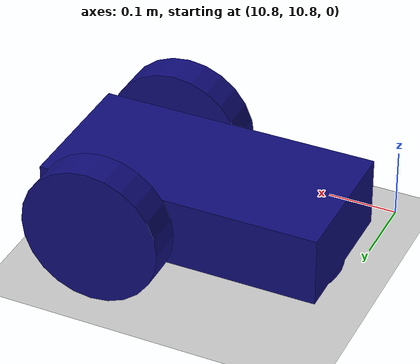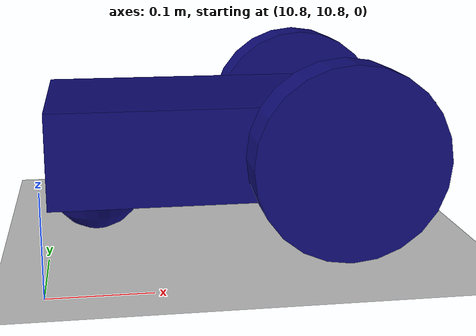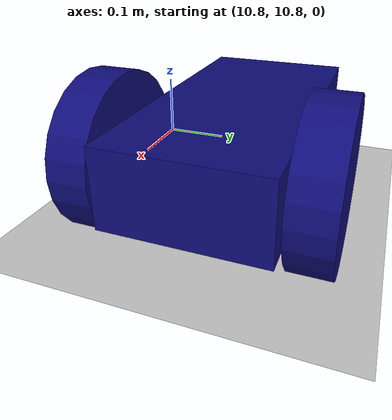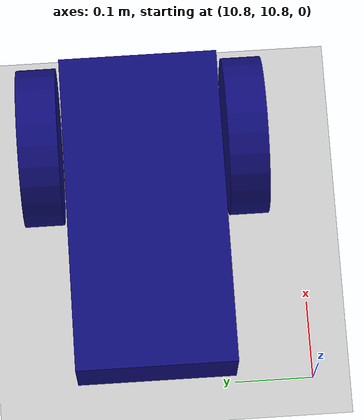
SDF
<?xml version="1.0"?>
<sdf version="1.4">
  <world name="default">

    <!-- Ground Plane -->
    <include>
      <uri>model://ground_plane</uri>
    </include>

    <include>
      <uri>model://sun</uri>
    </include>

    <include>
      <uri>model://car</uri>
    </include>

  </world>
</sdf>

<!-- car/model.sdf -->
<sdf version='1.4'>
  <model name="car">

    <static>false</static>
    <pose>11 11 0 0 0 0</pose>

    <link name='chassis'>
      <pose>0 0 .1 0 0 0</pose>
      <collision name='collision'>
        <geometry>
          <box>
            <size>.4 .2 .1</size>
          </box>
        </geometry>
      </collision>

      <visual name='visual'>
        <geometry>
          <box>
            <size>.4 .2 .1</size>
          </box>
        </geometry>
        <material>
          <script>
            <name>Gazebo/Grey</name>
            <uri>file://media/materials/scripts/gazebo.material</uri>
          </script>
          <ambient>0.059 0.047 0.478 1</ambient>
          <shader type='pixel'>
            <normal_map>__default__</normal_map>
          </shader>
          <diffuse>0.059 0.047 0.478 1</diffuse>
          <specular>0.059 0.047 0.478 1</specular>
          <emissive>0.059 0.047 0.478 1</emissive>
        </material>
      </visual>

      <collision name='caster_collision'>
        <pose>-0.15 0 -0.05 0 0 0</pose>
        <geometry>
          <sphere>
          <radius>.05</radius>
        </sphere>
      </geometry>

      <surface>
        <friction>
          <ode>
            <mu>0</mu>
            <mu2>0</mu2>
            <slip1>1.0</slip1>
            <slip2>1.0</slip2>
          </ode>
        </friction>
      </surface>
    </collision>

    <visual name='caster_visual'>
      <pose>-0.15 0 -0.05 0 0 0</pose>
      <geometry>
        <sphere>
          <radius>.05</radius>
        </sphere>
      </geometry>
      <material>
        <script>
          <name>Gazebo/Grey</name>
          <uri>file://media/materials/scripts/gazebo.material</uri>
        </script>
        <ambient>0.059 0.047 0.478 1</ambient>
        <shader type='pixel'>
          <normal_map>__default__</normal_map>
        </shader>
        <diffuse>0.059 0.047 0.478 1</diffuse>
        <specular>0.059 0.047 0.478 1</specular>
        <emissive>0.059 0.047 0.478 1</emissive>
      </material>
    </visual>
  </link>
  <link name="left_wheel">
    <pose>0.1 0.13 0.1 0 1.5707 1.5707</pose>
    <collision name="collision">
      <geometry>
        <cylinder>
          <radius>.1</radius>
          <length>.05</length>
        </cylinder>
      </geometry>
    </collision>
    <visual name="visual">
      <geometry>
        <cylinder>
          <radius>.1</radius>
          <length>.05</length>
        </cylinder>
      </geometry>
      <material>
        <script>
          <name>Gazebo/Grey</name>
          <uri>file://media/materials/scripts/gazebo.material</uri>
        </script>
        <ambient>0.059 0.047 0.478 1</ambient>
        <shader type='pixel'>
          <normal_map>__default__</normal_map>
        </shader>
        <diffuse>0.059 0.047 0.478 1</diffuse>
        <specular>0.059 0.047 0.478 1</specular>
        <emissive>0.059 0.047 0.478 1</emissive>
      </material>
    </visual>
  </link>

  <link name="right_wheel">
    <pose>0.1 -0.13 0.1 0 1.5707 1.5707</pose>
    <collision name="collision">
      <geometry>
        <cylinder>
          <radius>.1</radius>
          <length>.05</length>
        </cylinder>
      </geometry>
    </collision>
    <visual name="visual">
      <geometry>
        <cylinder>
          <radius>.1</radius>
          <length>.05</length>
        </cylinder>
      </geometry>
      <material>
        <script>
          <name>Gazebo/Grey</name>
          <uri>file://media/materials/scripts/gazebo.material</uri>
        </script>
        <ambient>0.059 0.047 0.478 1</ambient>
        <shader type='pixel'>
          <normal_map>__default__</normal_map>
        </shader>
        <diffuse>0.059 0.047 0.478 1</diffuse>
        <specular>0.059 0.047 0.478 1</specular>
        <emissive>0.059 0.047 0.478 1</emissive>
      </material>
    </visual>
  </link>

  <joint type="revolute" name="left_wheel_hinge">
    <pose>0 0 -0.03 0 0 0</pose>
    <child>left_wheel</child>
    <parent>chassis</parent>
    <axis>
      <xyz>0 1 0</xyz>
    </axis>
  </joint>

  <joint type="revolute" name="right_wheel_hinge">
    <pose>0 0 0.03 0 0 0</pose>
    <child>right_wheel</child>
    <parent>chassis</parent>
    <axis>
      <xyz>0 1 0</xyz>
    </axis>
  </joint>

  <!-- Include the plugin -->
  <plugin name="vel_control" filename="libvelControl.so"/>

  </model>
</sdf>
